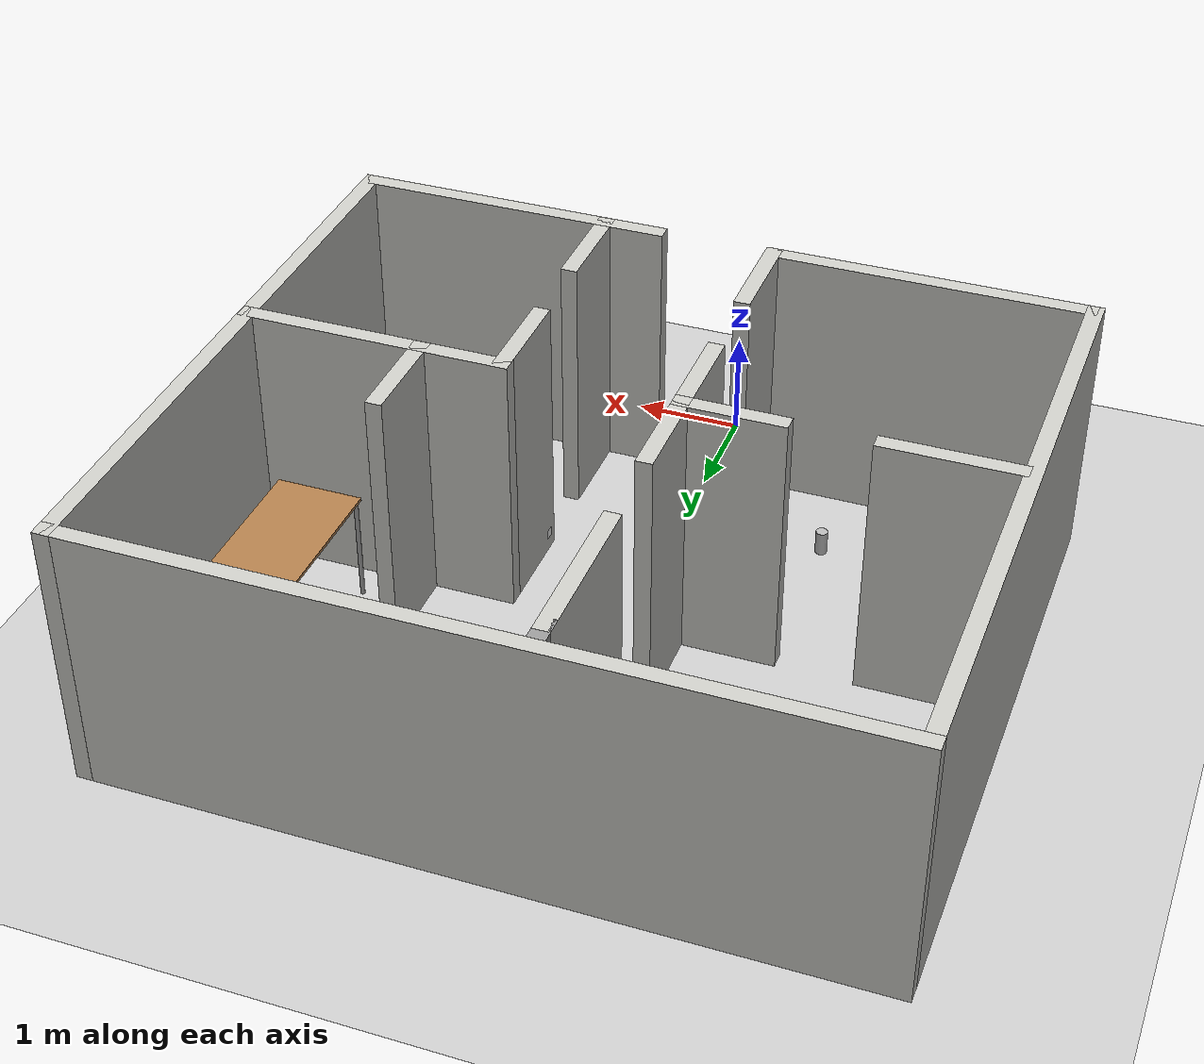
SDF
<sdf version="1.7">
 <world name="default">
  <light name="sun" type="directional">
   <pose>0 0 10 0 -0 0</pose>
   <diffuse>0.8 0.8 0.8 1</diffuse>
   <specular>0.2 0.2 0.2 1</specular>
   <attenuation>
    <range>1000</range>
    <constant>0.9</constant>
    <linear>0.01</linear>
    <quadratic>0.001</quadratic>
   </attenuation>
   <direction>-0.5 0.1 -0.9</direction>
   <spot><inner_angle>0</inner_angle><outer_angle>0</outer_angle><falloff>0</falloff></spot>
  </light>
  <model name="ground_plane">
   <static>1</static>
   <link name="link">
    <collision name="collision">
     <geometry><plane><normal>0 0 1</normal><size>100 100</size></plane></geometry>
     <surface>
      <contact><collide_bitmask>65535</collide_bitmask></contact>
      <friction><ode><mu>100</mu><mu2>50</mu2></ode></friction>
     </surface>
    </collision>
    <visual name="visual">
     <cast_shadows>0</cast_shadows>
     <geometry><plane><normal>0 0 1</normal><size>100 100</size></plane></geometry>
     <material>
      <script><uri>file://media/materials/scripts/gazebo.material</uri><name>Gazebo/Grey</name></script>
     </material>
    </visual>
   </link>
  </model>
  <gravity>0 0 -9.8</gravity>
  <magnetic_field>6e-06 2.3e-05 -4.2e-05</magnetic_field>
  <atmosphere type="adiabatic"/>
  <physics type="ode">
   <max_step_size>0.001</max_step_size>
   <real_time_factor>1</real_time_factor>
   <real_time_update_rate>1000</real_time_update_rate>
  </physics>
  <scene><ambient>0.4 0.4 0.4 1</ambient><background>0.7 0.7 0.7 1</background><shadows>1</shadows></scene>
  <spherical_coordinates>
   <surface_model>EARTH_WGS84</surface_model>
   <latitude_deg>0</latitude_deg>
   <longitude_deg>0</longitude_deg>
   <elevation>0</elevation>
   <heading_deg>0</heading_deg>
  </spherical_coordinates>
  <model name="small_WH">
   <pose>0.025947 3.69063 0 0 -0 0</pose>
   <link name="Wall_0">
    <collision name="Wall_0_Collision">
     <geometry><box><size>3 0.15 2.5</size></box></geometry>
     <pose>0 0 1.25 0 -0 0</pose>
    </collision>
    <visual name="Wall_0_Visual">
     <pose>0 0 1.25 0 -0 0</pose>
     <geometry><box><size>3 0.15 2.5</size></box></geometry>
     <material>
      <script><uri>file://media/materials/scripts/gazebo.material</uri><name>Gazebo/CeilingTiled</name></script>
      <ambient>1 0.764706 0.305882 1</ambient>
     </material>
     <meta><layer>0</layer></meta>
    </visual>
    <pose>-1.95 -2.925 0 0 -0 0</pose>
   </link>
   <link name="Wall_11">
    <collision name="Wall_11_Collision">
     <geometry><box><size>1 0.15 2.5</size></box></geometry>
     <pose>0 0 1.25 0 -0 0</pose>
    </collision>
    <visual name="Wall_11_Visual">
     <pose>0 0 1.25 0 -0 0</pose>
     <geometry><box><size>1 0.15 2.5</size></box></geometry>
     <material>
      <script><uri>file://media/materials/scripts/gazebo.material</uri><name>Gazebo/CeilingTiled</name></script>
      <ambient>1 0.764706 0.305882 1</ambient>
     </material>
     <meta><layer>0</layer></meta>
    </visual>
    <pose>-0.525 -0.8 0 0 -0 1.5708</pose>
   </link>
   <link name="Wall_12">
    <collision name="Wall_12_Collision">
     <geometry><box><size>1 0.15 2.5</size></box></geometry>
     <pose>0 0 1.25 0 -0 0</pose>
    </collision>
    <visual name="Wall_12_Visual">
     <pose>0 0 1.25 0 -0 0</pose>
     <geometry><box><size>1 0.15 2.5</size></box></geometry>
     <material>
      <script><uri>file://media/materials/scripts/gazebo.material</uri><name>Gazebo/CeilingTiled</name></script>
      <ambient>1 0.764706 0.305882 1</ambient>
     </material>
     <meta><layer>0</layer></meta>
    </visual>
    <pose>-0.95 -0.375 0 0 -0 3.14159</pose>
   </link>
   <link name="Wall_14">
    <collision name="Wall_14_Collision">
     <geometry><box><size>1.25 0.15 2.5</size></box></geometry>
     <pose>0 0 1.25 0 -0 0</pose>
    </collision>
    <visual name="Wall_14_Visual">
     <pose>0 0 1.25 0 -0 0</pose>
     <geometry><box><size>1.25 0.15 2.5</size></box></geometry>
     <material>
      <script><uri>file://media/materials/scripts/gazebo.material</uri><name>Gazebo/CeilingTiled</name></script>
      <ambient>1 0.764706 0.305882 1</ambient>
     </material>
     <meta><layer>0</layer></meta>
    </visual>
    <pose>-2.775 -0.375 0 0 -0 3.14159</pose>
   </link>
   <link name="Wall_16">
    <collision name="Wall_16_Collision">
     <geometry><box><size>1 0.15 2.5</size></box></geometry>
     <pose>0 0 1.25 0 -0 0</pose>
    </collision>
    <visual name="Wall_16_Visual">
     <pose>0 0 1.25 0 -0 0</pose>
     <geometry><box><size>1 0.15 2.5</size></box></geometry>
     <material>
      <script><uri>file://media/materials/scripts/gazebo.material</uri><name>Gazebo/CeilingTiled</name></script>
      <ambient>1 0.764706 0.305882 1</ambient>
     </material>
     <meta><layer>0</layer></meta>
    </visual>
    <pose>-0.525 0.05 0 0 -0 1.5708</pose>
   </link>
   <link name="Wall_18">
    <collision name="Wall_18_Collision">
     <geometry><box><size>1.5 0.15 2.5</size></box></geometry>
     <pose>0 0 1.25 0 -0 0</pose>
    </collision>
    <visual name="Wall_18_Visual">
     <pose>0 0 1.25 0 -0 0</pose>
     <geometry><box><size>1.5 0.15 2.5</size></box></geometry>
     <material>
      <script><uri>file://media/materials/scripts/gazebo.material</uri><name>Gazebo/CeilingTiled</name></script>
      <ambient>1 0.764706 0.305882 1</ambient>
     </material>
     <meta><layer>0</layer></meta>
    </visual>
    <pose>-0.525 2 0 0 -0 1.5708</pose>
   </link>
   <link name="Wall_19">
    <collision name="Wall_19_Collision">
     <geometry><box><size>0.25 0.15 2.5</size></box></geometry>
     <pose>0 0 1.25 0 -0 0</pose>
    </collision>
    <visual name="Wall_19_Visual">
     <pose>0 0 1.25 0 -0 0</pose>
     <geometry><box><size>0.25 0.15 2.5</size></box></geometry>
     <material>
      <script><uri>file://media/materials/scripts/gazebo.material</uri><name>Gazebo/Grey</name></script>
      <ambient>1 1 1 1</ambient>
     </material>
     <meta><layer>0</layer></meta>
    </visual>
    <pose>-0.525 2.725 0 0 -0 1.5708</pose>
   </link>
   <link name="Wall_2">
    <collision name="Wall_2_Collision">
     <geometry><box><size>3 0.15 2.5</size></box></geometry>
     <pose>0 0 1.25 0 -0 0</pose>
    </collision>
    <visual name="Wall_2_Visual">
     <pose>0 0 1.25 0 -0 0</pose>
     <geometry><box><size>3 0.15 2.5</size></box></geometry>
     <material>
      <script><uri>file://media/materials/scripts/gazebo.material</uri><name>Gazebo/CeilingTiled</name></script>
      <ambient>1 0.764706 0.305882 1</ambient>
     </material>
     <meta><layer>0</layer></meta>
    </visual>
    <pose>2 -2.925 0 0 -0 0</pose>
   </link>
   <link name="Wall_21">
    <collision name="Wall_21_Collision">
     <geometry><box><size>2.5 0.15 2.5</size></box></geometry>
     <pose>0 0 1.25 0 -0 0</pose>
    </collision>
    <visual name="Wall_21_Visual">
     <pose>0 0 1.25 0 -0 0</pose>
     <geometry><box><size>2.5 0.15 2.5</size></box></geometry>
     <material>
      <script><uri>file://media/materials/scripts/gazebo.material</uri><name>Gazebo/CeilingTiled</name></script>
      <ambient>1 0.764706 0.305882 1</ambient>
     </material>
     <meta><layer>0</layer></meta>
    </visual>
    <pose>2.241 -0.397004 0 0 -0 3.14159</pose>
   </link>
   <link name="Wall_22">
    <collision name="Wall_22_Collision">
     <geometry><box><size>1 0.15 2.5</size></box></geometry>
     <pose>0 0 1.25 0 -0 0</pose>
    </collision>
    <visual name="Wall_22_Visual">
     <pose>0 0 1.25 0 -0 0</pose>
     <geometry><box><size>1 0.15 2.5</size></box></geometry>
     <material>
      <script><uri>file://media/materials/scripts/gazebo.material</uri><name>Gazebo/CeilingTiled</name></script>
      <ambient>1 0.764706 0.305882 1</ambient>
     </material>
     <meta><layer>0</layer></meta>
    </visual>
    <pose>1.066 -0.822004 0 0 -0 -1.5708</pose>
   </link>
   <link name="Wall_24">
    <collision name="Wall_24_Collision">
     <geometry><box><size>1 0.15 2.5</size></box></geometry>
     <pose>0 0 1.25 0 -0 0</pose>
    </collision>
    <visual name="Wall_24_Visual">
     <pose>0 0 1.25 0 -0 0</pose>
     <geometry><box><size>1 0.15 2.5</size></box></geometry>
     <material>
      <script><uri>file://media/materials/scripts/gazebo.material</uri><name>Gazebo/CeilingTiled</name></script>
      <ambient>1 0.764706 0.305882 1</ambient>
     </material>
     <meta><layer>0</layer></meta>
    </visual>
    <pose>1.07922 -2.49555 0 0 -0 -1.5708</pose>
   </link>
   <link name="Wall_26">
    <collision name="Wall_26_Collision">
     <geometry><box><size>1 0.15 2.5</size></box></geometry>
     <pose>0 0 1.25 0 -0 0</pose>
    </collision>
    <visual name="Wall_26_Visual">
     <pose>0 0 1.25 0 -0 0</pose>
     <geometry><box><size>1 0.15 2.5</size></box></geometry>
     <material>
      <script><uri>file://media/materials/scripts/gazebo.material</uri><name>Gazebo/CeilingTiled</name></script>
      <ambient>1 0.764706 0.305882 1</ambient>
     </material>
     <meta><layer>0</layer></meta>
    </visual>
    <pose>1.81629 0.03233 0 0 -0 1.5708</pose>
   </link>
   <link name="Wall_5">
    <collision name="Wall_5_Collision">
     <geometry><box><size>6 0.15 2.5</size></box></geometry>
     <pose>0 0 1.25 0 -0 0</pose>
    </collision>
    <visual name="Wall_5_Visual">
     <pose>0 0 1.25 0 -0 0</pose>
     <geometry><box><size>6 0.15 2.5</size></box></geometry>
     <material>
      <script><uri>file://media/materials/scripts/gazebo.material</uri><name>Gazebo/CeilingTiled</name></script>
      <ambient>1 0.764706 0.305882 1</ambient>
     </material>
     <meta><layer>0</layer></meta>
    </visual>
    <pose>3.425 0 0 0 -0 1.5708</pose>
   </link>
   <link name="Wall_6">
    <collision name="Wall_6_Collision">
     <geometry><box><size>7 0.15 2.5</size></box></geometry>
     <pose>0 0 1.25 0 -0 0</pose>
    </collision>
    <visual name="Wall_6_Visual">
     <pose>0 0 1.25 0 -0 0</pose>
     <geometry><box><size>7 0.15 2.5</size></box></geometry>
     <material>
      <script><uri>file://media/materials/scripts/gazebo.material</uri><name>Gazebo/CeilingTiled</name></script>
      <ambient>1 0.764706 0.305882 1</ambient>
     </material>
     <meta><layer>0</layer></meta>
    </visual>
    <pose>0 2.925 0 0 -0 3.14159</pose>
   </link>
   <link name="Wall_7">
    <collision name="Wall_7_Collision">
     <geometry><box><size>6 0.15 2.5</size></box></geometry>
     <pose>0 0 1.25 0 -0 0</pose>
    </collision>
    <visual name="Wall_7_Visual">
     <pose>0 0 1.25 0 -0 0</pose>
     <geometry><box><size>6 0.15 2.5</size></box></geometry>
     <material>
      <script><uri>file://media/materials/scripts/gazebo.material</uri><name>Gazebo/CeilingTiled</name></script>
      <ambient>1 0.764706 0.305882 1</ambient>
     </material>
     <meta><layer>0</layer></meta>
    </visual>
    <pose>-3.425 0 0 0 -0 -1.5708</pose>
   </link>
   <link name="Wall_9">
    <collision name="Wall_9_Collision">
     <geometry><box><size>1 0.15 2.5</size></box></geometry>
     <pose>0 0 1.25 0 -0 0</pose>
    </collision>
    <visual name="Wall_9_Visual">
     <pose>0 0 1.25 0 -0 0</pose>
     <geometry><box><size>1 0.15 2.5</size></box></geometry>
     <material>
      <script><uri>file://media/materials/scripts/gazebo.material</uri><name>Gazebo/CeilingTiled</name></script>
      <ambient>1 0.764706 0.305882 1</ambient>
     </material>
     <meta><layer>0</layer></meta>
    </visual>
    <pose>-0.525 -2.5 0 0 -0 1.5708</pose>
   </link>
   <static>1</static>
  </model>
  <model name="beer">
   <link name="link">
    <pose>0 0 0.115 0 -0 0</pose>
    <inertial>
     <mass>0.39</mass>
     <inertia><ixx>0.00058</ixx><ixy>0</ixy><ixz>0</ixz><iyy>0.00058</iyy><iyz>0</iyz><izz>0.00019</izz></inertia>
    </inertial>
    <collision name="collision">
     <geometry><cylinder><radius>0.055</radius><length>0.23</length></cylinder></geometry>
    </collision>
    <visual name="visual">
     <geometry><cylinder><radius>0.055</radius><length>0.23</length></cylinder></geometry>
     <material>
      <script>
       <uri>model://beer/materials/scripts</uri>
       <uri>model://beer/materials/textures</uri>
       <name>Beer/Diffuse</name>
      </script>
     </material>
    </visual>
   </link>
   <pose>-1.34937 1.67573 -7e-06 -1e-06 -0 -4.3e-05</pose>
  </model>
  <model name="table">
   <static>1</static>
   <link name="link">
    <collision name="surface">
     <pose>0 0 1 0 -0 0</pose>
     <geometry><box><size>1.5 0.8 0.03</size></box></geometry>
     <surface><friction><ode><mu>0.6</mu><mu2>0.6</mu2></ode></friction></surface>
    </collision>
    <visual name="visual1">
     <pose>0 0 1 0 -0 0</pose>
     <geometry><box><size>1.5 0.8 0.03</size></box></geometry>
     <material>
      <script><uri>file://media/materials/scripts/gazebo.material</uri><name>Gazebo/Wood</name></script>
     </material>
    </visual>
    <collision name="front_left_leg">
     <pose>0.68 0.38 0.5 0 -0 0</pose>
     <geometry><cylinder><radius>0.02</radius><length>1</length></cylinder></geometry>
    </collision>
    <visual name="front_left_leg">
     <pose>0.68 0.38 0.5 0 -0 0</pose>
     <geometry><cylinder><radius>0.02</radius><length>1</length></cylinder></geometry>
     <material>
      <script><uri>file://media/materials/scripts/gazebo.material</uri><name>Gazebo/Grey</name></script>
     </material>
    </visual>
    <collision name="front_right_leg">
     <pose>0.68 -0.38 0.5 0 -0 0</pose>
     <geometry><cylinder><radius>0.02</radius><length>1</length></cylinder></geometry>
    </collision>
    <visual name="front_right_leg">
     <pose>0.68 -0.38 0.5 0 -0 0</pose>
     <geometry><cylinder><radius>0.02</radius><length>1</length></cylinder></geometry>
     <material>
      <script><uri>file://media/materials/scripts/gazebo.material</uri><name>Gazebo/Grey</name></script>
     </material>
    </visual>
    <collision name="back_right_leg">
     <pose>-0.68 -0.38 0.5 0 -0 0</pose>
     <geometry><cylinder><radius>0.02</radius><length>1</length></cylinder></geometry>
    </collision>
    <visual name="back_right_leg">
     <pose>-0.68 -0.38 0.5 0 -0 0</pose>
     <geometry><cylinder><radius>0.02</radius><length>1</length></cylinder></geometry>
     <material>
      <script><uri>file://media/materials/scripts/gazebo.material</uri><name>Gazebo/Grey</name></script>
     </material>
    </visual>
    <collision name="back_left_leg">
     <pose>-0.68 0.38 0.5 0 -0 0</pose>
     <geometry><cylinder><radius>0.02</radius><length>1</length></cylinder></geometry>
    </collision>
    <visual name="back_left_leg">
     <pose>-0.68 0.38 0.5 0 -0 0</pose>
     <geometry><cylinder><radius>0.02</radius><length>1</length></cylinder></geometry>
     <material>
      <script><uri>file://media/materials/scripts/gazebo.material</uri><name>Gazebo/Grey</name></script>
     </material>
    </visual>
   </link>
   <pose>2.73416 4.37048 0 0 -0 1.56629</pose>
  </model>
  <model name="aruco_visual_marker_0">
   <link name="marker">
    <visual name="visual">
     <geometry><box><size>0.09 0.09 0.001</size></box></geometry>
     <material>
      <script>
       <uri>model://aruco_visual_marker_0/materials/scripts</uri>
       <uri>model://aruco_visual_marker_0/materials/textures</uri>
       <name>ArucoVisualMarker0/Marker</name>
      </script>
      <ambient>1 1 1 1</ambient>
      <diffuse>1 1 1 1</diffuse>
      <specular>0 0 0 1</specular>
      <emissive>1 1 1 0</emissive>
      <shader type="vertex"><normal_map>__default__</normal_map></shader>
     </material>
    </visual>
    <collision name="collision"><geometry><box><size>0.09 0.09 0.001</size></box></geometry></collision>
   </link>
   <link name="marker_pad">
    <pose relative_to="marker">0 0 -1e-05 0 -0 0</pose>
    <visual name="visual">
     <geometry><box><size>0.09 0.09 0.001</size></box></geometry>
     <material>
      <lighting>1</lighting>
      <script><uri>file://media/materials/scripts/gazebo.material</uri><name>Gazebo/White</name></script>
      <ambient>0.3 0.3 0.3 1</ambient>
      <diffuse>0.7 0.7 0.7 1</diffuse>
      <specular>0.01 0.01 0.01 1</specular>
      <emissive>1 1 1 0</emissive>
      <shader type="vertex"><normal_map>__default__</normal_map></shader>
     </material>
    </visual>
    <collision name="collision"><geometry><box><size>0.09 0.09 0.001</size></box></geometry></collision>
   </link>
   <joint name="marker_JOINT_marker_pad" type="revolute">
    <parent>marker</parent>
    <child>marker_pad</child>
    <axis>
     <xyz>0 0 1</xyz>
     <limit><upper>0</upper><lower>0</lower></limit>
     <dynamics><spring_reference>0</spring_reference><spring_stiffness>0</spring_stiffness></dynamics>
    </axis>
   </joint>
   <static>1</static>
   <pose>-0.57593 4.13481 0.152934 1.5685 0.000708 -1.5708</pose>
  </model>
  <model name="aruco_visual_marker_1">
   <link name="marker">
    <visual name="visual">
     <geometry><box><size>0.09 0.09 0.001</size></box></geometry>
     <material>
      <script>
       <uri>model://aruco_visual_marker_1/materials/scripts</uri>
       <uri>model://aruco_visual_marker_1/materials/textures</uri>
       <name>ArucoVisualMarker1/Marker</name>
      </script>
      <ambient>1 1 1 1</ambient>
      <diffuse>1 1 1 1</diffuse>
      <specular>0 0 0 1</specular>
      <emissive>1 1 1 0</emissive>
      <shader type="vertex"><normal_map>__default__</normal_map></shader>
     </material>
    </visual>
    <collision name="collision"><geometry><box><size>0.09 0.09 0.001</size></box></geometry></collision>
   </link>
   <link name="marker_pad">
    <pose relative_to="marker">0 0 -1e-05 0 -0 0</pose>
    <visual name="visual">
     <geometry><box><size>0.09 0.09 0.001</size></box></geometry>
     <material>
      <lighting>1</lighting>
      <script><uri>file://media/materials/scripts/gazebo.material</uri><name>Gazebo/White</name></script>
      <ambient>0.3 0.3 0.3 1</ambient>
      <diffuse>0.7 0.7 0.7 1</diffuse>
      <specular>0.01 0.01 0.01 1</specular>
      <emissive>1 1 1 0</emissive>
      <shader type="vertex"><normal_map>__default__</normal_map></shader>
     </material>
    </visual>
    <collision name="collision"><geometry><box><size>0.09 0.09 0.001</size></box></geometry></collision>
   </link>
   <joint name="marker_JOINT_marker_pad" type="revolute">
    <parent>marker</parent>
    <child>marker_pad</child>
    <axis>
     <xyz>0 0 1</xyz>
     <limit><upper>0</upper><lower>0</lower></limit>
     <dynamics><spring_reference>0</spring_reference><spring_stiffness>0</spring_stiffness></dynamics>
    </axis>
   </joint>
   <static>1</static>
   <pose>-0.423765 4.1038 0.20319 1.57153 -0.009421 1.57079</pose>
  </model>
  <model name="aruco_visual_marker_2">
   <link name="marker">
    <visual name="visual">
     <geometry><box><size>0.09 0.09 0.001</size></box></geometry>
     <material>
      <script>
       <uri>model://aruco_visual_marker_2/materials/scripts</uri>
       <uri>model://aruco_visual_marker_2/materials/textures</uri>
       <name>ArucoVisualMarker2/Marker</name>
      </script>
      <ambient>1 1 1 1</ambient>
      <diffuse>1 1 1 1</diffuse>
      <specular>0 0 0 1</specular>
      <emissive>1 1 1 0</emissive>
      <shader type="vertex"><normal_map>__default__</normal_map></shader>
     </material>
    </visual>
    <collision name="collision"><geometry><box><size>0.09 0.09 0.001</size></box></geometry></collision>
   </link>
   <link name="marker_pad">
    <pose relative_to="marker">0 0 -1e-05 0 -0 0</pose>
    <visual name="visual">
     <geometry><box><size>0.09 0.09 0.001</size></box></geometry>
     <material>
      <lighting>1</lighting>
      <script><uri>file://media/materials/scripts/gazebo.material</uri><name>Gazebo/White</name></script>
      <ambient>0.3 0.3 0.3 1</ambient>
      <diffuse>0.7 0.7 0.7 1</diffuse>
      <specular>0.01 0.01 0.01 1</specular>
      <emissive>1 1 1 0</emissive>
      <shader type="vertex"><normal_map>__default__</normal_map></shader>
     </material>
    </visual>
    <collision name="collision"><geometry><box><size>0.09 0.09 0.001</size></box></geometry></collision>
   </link>
   <joint name="marker_JOINT_marker_pad" type="revolute">
    <parent>marker</parent>
    <child>marker_pad</child>
    <axis>
     <xyz>0 0 1</xyz>
     <limit><upper>0</upper><lower>0</lower></limit>
     <dynamics><spring_reference>0</spring_reference><spring_stiffness>0</spring_stiffness></dynamics>
    </axis>
   </joint>
   <static>1</static>
   <pose>-0.417761 1.54344 0.19423 1.56139 -0.001877 1.57081</pose>
  </model>
  <model name="aruco_visual_marker_3">
   <link name="marker">
    <visual name="visual">
     <geometry><box><size>0.09 0.09 0.001</size></box></geometry>
     <material>
      <script>
       <uri>model://aruco_visual_marker_3/materials/scripts</uri>
       <uri>model://aruco_visual_marker_3/materials/textures</uri>
       <name>ArucoVisualMarker3/Marker</name>
      </script>
      <ambient>1 1 1 1</ambient>
      <diffuse>1 1 1 1</diffuse>
      <specular>0 0 0 1</specular>
      <emissive>1 1 1 0</emissive>
      <shader type="vertex"><normal_map>__default__</normal_map></shader>
     </material>
    </visual>
    <collision name="collision"><geometry><box><size>0.09 0.09 0.001</size></box></geometry></collision>
   </link>
   <link name="marker_pad">
    <pose relative_to="marker">0 0 -1e-05 0 -0 0</pose>
    <visual name="visual">
     <geometry><box><size>0.09 0.09 0.001</size></box></geometry>
     <material>
      <lighting>1</lighting>
      <script><uri>file://media/materials/scripts/gazebo.material</uri><name>Gazebo/White</name></script>
      <ambient>0.3 0.3 0.3 1</ambient>
      <diffuse>0.7 0.7 0.7 1</diffuse>
      <specular>0.01 0.01 0.01 1</specular>
      <emissive>1 1 1 0</emissive>
      <shader type="vertex"><normal_map>__default__</normal_map></shader>
     </material>
    </visual>
    <collision name="collision"><geometry><box><size>0.09 0.09 0.001</size></box></geometry></collision>
   </link>
   <joint name="marker_JOINT_marker_pad" type="revolute">
    <parent>marker</parent>
    <child>marker_pad</child>
    <axis>
     <xyz>0 0 1</xyz>
     <limit><upper>0</upper><lower>0</lower></limit>
     <dynamics><spring_reference>0</spring_reference><spring_stiffness>0</spring_stiffness></dynamics>
    </axis>
   </joint>
   <static>1</static>
   <pose>1.01373 2.4829 0.173563 1.57135 0.002481 -1.57079</pose>
  </model>
 </world>
</sdf>
